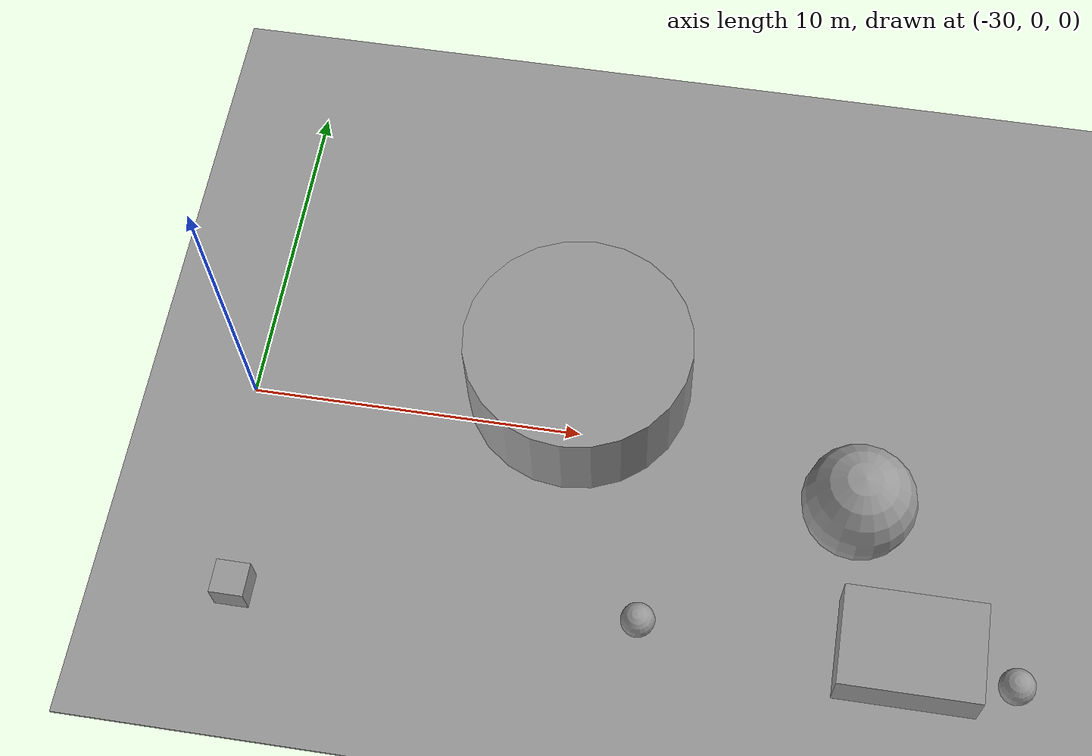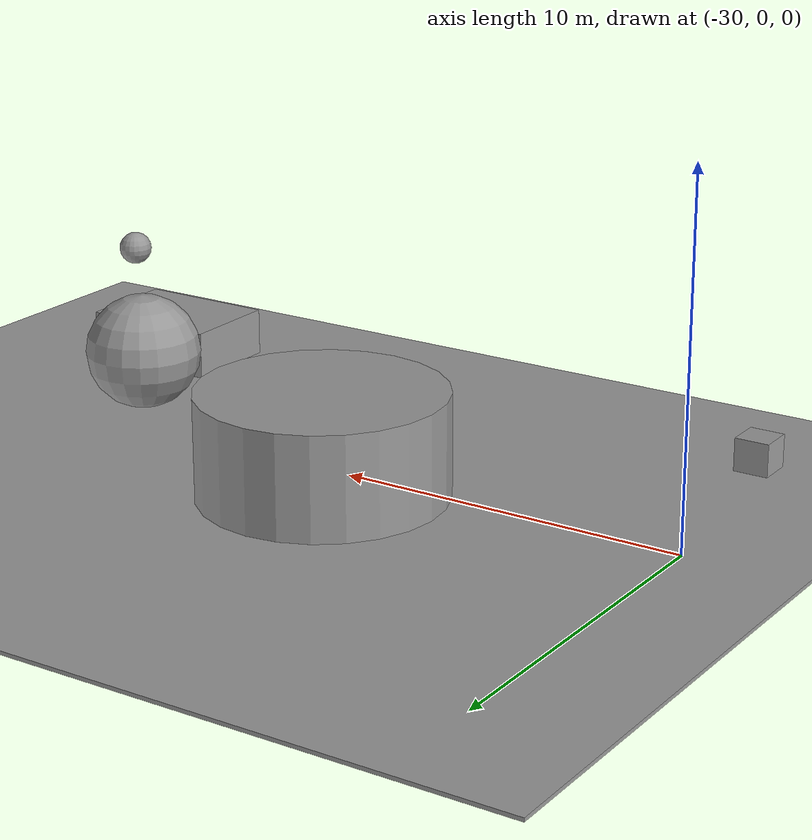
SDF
<sdf version="1.6">
 <world name="default">
  <light name="sun" type="directional">
   <pose>0 0 10 0 -0 0</pose>
   <diffuse>0.8 0.8 0.8 1</diffuse>
   <specular>0.2 0.2 0.2 1</specular>
   <attenuation>
    <range>1000</range>
    <constant>0.9</constant>
    <linear>0.01</linear>
    <quadratic>0.001</quadratic>
   </attenuation>
   <direction>-0.5 0.1 -0.9</direction>
  </light>
  <model name="ground_plane">
   <static>1</static>
   <link name="link">
    <collision name="collision">
     <geometry><plane><normal>0 0 1</normal><size>100 100</size></plane></geometry>
     <surface>
      <contact><collide_bitmask>65535</collide_bitmask></contact>
      <friction><ode><mu>100</mu><mu2>50</mu2></ode></friction>
     </surface>
    </collision>
    <visual name="visual">
     <cast_shadows>0</cast_shadows>
     <geometry><plane><normal>0 0 1</normal><size>100 100</size></plane></geometry>
     <material>
      <script><uri>file://media/materials/scripts/gazebo.material</uri><name>Gazebo/Grey</name></script>
     </material>
    </visual>
   </link>
  </model>
  <gravity>0 0 -9.8</gravity>
  <magnetic_field>6e-06 2.3e-05 -4.2e-05</magnetic_field>
  <atmosphere type="adiabatic"/>
  <physics name="default_physics" default="0" type="ode">
   <max_step_size>0.001</max_step_size>
   <real_time_factor>1</real_time_factor>
   <real_time_update_rate>1000</real_time_update_rate>
  </physics>
  <scene><ambient>0.4 0.4 0.4 1</ambient><background>0.7 0.7 0.7 1</background><shadows>1</shadows></scene>
  <spherical_coordinates>
   <surface_model>EARTH_WGS84</surface_model>
   <latitude_deg>0</latitude_deg>
   <longitude_deg>0</longitude_deg>
   <elevation>0</elevation>
   <heading_deg>0</heading_deg>
  </spherical_coordinates>
  <model name="ground_plane_0">
   <static>1</static>
   <link name="ground_plane_0::link">
    <collision name="collision">
     <geometry><plane><normal>0 0 1</normal><size>100 100</size></plane></geometry>
     <surface>
      <contact><collide_bitmask>65535</collide_bitmask></contact>
      <friction><ode><mu>100</mu><mu2>50</mu2></ode></friction>
     </surface>
    </collision>
    <visual name="visual">
     <cast_shadows>0</cast_shadows>
     <geometry><plane><normal>0 0 1</normal><size>100 100</size></plane></geometry>
     <material>
      <script><uri>file://media/materials/scripts/gazebo.material</uri><name>Gazebo/Grey</name></script>
     </material>
    </visual>
   </link>
   <pose>0.067805 0.094496 0 0 -0 0</pose>
  </model>
  <light name="user_point_light_0" type="point">
   <pose>-8.06988 14.5226 1 0 -0 0</pose>
   <diffuse>0.5 0.5 0.5 1</diffuse>
   <specular>0.1 0.1 0.1 1</specular>
   <attenuation>
    <range>20</range>
    <constant>0.5</constant>
    <linear>0.01</linear>
    <quadratic>0.001</quadratic>
   </attenuation>
   <cast_shadows>0</cast_shadows>
   <direction>0 0 -1</direction>
  </light>
  <light name="user_point_light_1" type="point">
   <pose>-21.1249 13.4233 1 0 -0 0</pose>
   <diffuse>0.5 0.5 0.5 1</diffuse>
   <specular>0.1 0.1 0.1 1</specular>
   <attenuation>
    <range>20</range>
    <constant>0.5</constant>
    <linear>0.01</linear>
    <quadratic>0.001</quadratic>
   </attenuation>
   <cast_shadows>0</cast_shadows>
   <direction>0 0 -1</direction>
  </light>
  <model name="unit_cylinder">
   <link name="link">
    <inertial>
     <mass>226.52</mass>
     <inertia><ixx>1107.4</ixx><ixy>0</ixy><ixz>0</ixz><iyy>1107.4</iyy><iyz>0</iyz><izz>1310.6</izz></inertia>
    </inertial>
    <visual name="visual">
     <geometry><cylinder><radius>3.40171</radius><length>4.89391</length></cylinder></geometry>
     <material>
      <script><name>Gazebo/Grey</name><uri>file://media/materials/scripts/gazebo.material</uri></script>
      <shader type="pixel"/>
     </material>
    </visual>
    <collision name="collision">
     <geometry><cylinder><radius>3.40171</radius><length>4.89391</length></cylinder></geometry>
     <surface>
      <friction>
       <ode><mu>1</mu><mu2>1</mu2><fdir1>0 0 0</fdir1><slip1>0</slip1><slip2>0</slip2></ode>
       <torsional>
        <coefficient>1</coefficient>
        <patch_radius>0</patch_radius>
        <surface_radius>0</surface_radius>
        <use_patch_radius>1</use_patch_radius>
        <ode><slip>0</slip></ode>
       </torsional>
      </friction>
      <bounce><restitution_coefficient>0</restitution_coefficient><threshold>1e+06</threshold></bounce>
      <contact>
       <collide_without_contact>0</collide_without_contact>
       <collide_without_contact_bitmask>1</collide_without_contact_bitmask>
       <collide_bitmask>1</collide_bitmask>
       <ode>
        <soft_cfm>0</soft_cfm>
        <soft_erp>0.2</soft_erp>
        <kp>1e+13</kp>
        <kd>1</kd>
        <max_vel>0.01</max_vel>
        <min_depth>0</min_depth>
       </ode>
       <bullet>
        <split_impulse>1</split_impulse>
        <split_impulse_penetration_threshold>-0.01</split_impulse_penetration_threshold>
        <soft_cfm>0</soft_cfm>
        <soft_erp>0.2</soft_erp>
        <kp>1e+13</kp>
        <kd>1</kd>
       </bullet>
      </contact>
     </surface>
    </collision>
   </link>
   <link name="link_0">
    <inertial>
     <mass>1</mass>
     <inertia><ixx>0.1</ixx><ixy>0</ixy><ixz>0</ixz><iyy>0.1</iyy><iyz>0</iyz><izz>0.1</izz></inertia>
    </inertial>
    <pose>2.83146 -7.29755 -0 0 -0 0</pose>
    <visual name="visual">
     <geometry><sphere><radius>0.5</radius></sphere></geometry>
     <material>
      <lighting>1</lighting>
      <script><uri>file://media/materials/scripts/gazebo.material</uri><name>Gazebo/Grey</name></script>
      <shader type="pixel"/>
     </material>
    </visual>
    <collision name="collision">
     <geometry><sphere><radius>0.5</radius></sphere></geometry>
     <surface>
      <friction>
       <ode><mu>1</mu><mu2>1</mu2><fdir1>0 0 0</fdir1><slip1>0</slip1><slip2>0</slip2></ode>
       <torsional>
        <coefficient>1</coefficient>
        <patch_radius>0</patch_radius>
        <surface_radius>0</surface_radius>
        <use_patch_radius>1</use_patch_radius>
        <ode><slip>0</slip></ode>
       </torsional>
      </friction>
      <bounce><restitution_coefficient>0</restitution_coefficient><threshold>1e+06</threshold></bounce>
      <contact>
       <collide_without_contact>0</collide_without_contact>
       <collide_without_contact_bitmask>1</collide_without_contact_bitmask>
       <collide_bitmask>1</collide_bitmask>
       <ode>
        <soft_cfm>0</soft_cfm>
        <soft_erp>0.2</soft_erp>
        <kp>1e+13</kp>
        <kd>1</kd>
        <max_vel>0.01</max_vel>
        <min_depth>0</min_depth>
       </ode>
       <bullet>
        <split_impulse>1</split_impulse>
        <split_impulse_penetration_threshold>-0.01</split_impulse_penetration_threshold>
        <soft_cfm>0</soft_cfm>
        <soft_erp>0.2</soft_erp>
        <kp>1e+13</kp>
        <kd>1</kd>
       </bullet>
      </contact>
     </surface>
    </collision>
   </link>
   <link name="link_1">
    <inertial>
     <mass>1</mass>
     <inertia>
      <ixx>0.166667</ixx>
      <ixy>0</ixy>
      <ixz>0</ixz>
      <iyy>0.166667</iyy>
      <iyz>0</iyz>
      <izz>0.166667</izz>
     </inertia>
    </inertial>
    <pose>-8.79955 -7.95536 0 0 -0 0</pose>
    <visual name="visual">
     <geometry><box><size>1 1 1</size></box></geometry>
     <material>
      <lighting>1</lighting>
      <script><uri>file://media/materials/scripts/gazebo.material</uri><name>Gazebo/Grey</name></script>
      <shader type="pixel"/>
     </material>
    </visual>
    <collision name="collision">
     <geometry><box><size>1 1 1</size></box></geometry>
     <surface>
      <friction>
       <ode><mu>1</mu><mu2>1</mu2><fdir1>0 0 0</fdir1><slip1>0</slip1><slip2>0</slip2></ode>
       <torsional>
        <coefficient>1</coefficient>
        <patch_radius>0</patch_radius>
        <surface_radius>0</surface_radius>
        <use_patch_radius>1</use_patch_radius>
        <ode><slip>0</slip></ode>
       </torsional>
      </friction>
      <bounce><restitution_coefficient>0</restitution_coefficient><threshold>1e+06</threshold></bounce>
      <contact>
       <collide_without_contact>0</collide_without_contact>
       <collide_without_contact_bitmask>1</collide_without_contact_bitmask>
       <collide_bitmask>1</collide_bitmask>
       <ode>
        <soft_cfm>0</soft_cfm>
        <soft_erp>0.2</soft_erp>
        <kp>1e+13</kp>
        <kd>1</kd>
        <max_vel>0.01</max_vel>
        <min_depth>0</min_depth>
       </ode>
       <bullet>
        <split_impulse>1</split_impulse>
        <split_impulse_penetration_threshold>-0.01</split_impulse_penetration_threshold>
        <soft_cfm>0</soft_cfm>
        <soft_erp>0.2</soft_erp>
        <kp>1e+13</kp>
        <kd>1</kd>
       </bullet>
      </contact>
     </surface>
    </collision>
   </link>
   <static>0</static>
   <pose>-20.2655 1.59478 0.5 0 -0 0</pose>
  </model>
  <model name="unit_sphere">
   <link name="link">
    <inertial>
     <mass>37.5637</mass>
     <inertia><ixx>42.1324</ixx><ixy>0</ixy><ixz>0</ixz><iyy>42.1324</iyy><iyz>0</iyz><izz>42.1324</izz></inertia>
    </inertial>
    <pose>1.34402 -1.55403 1.07855 0 -0 0</pose>
    <visual name="visual">
     <geometry><sphere><radius>1.67453</radius></sphere></geometry>
     <material>
      <script><name>Gazebo/Grey</name><uri>file://media/materials/scripts/gazebo.material</uri></script>
      <shader type="pixel"/>
     </material>
    </visual>
    <collision name="collision">
     <geometry><sphere><radius>1.67453</radius></sphere></geometry>
     <surface>
      <friction>
       <ode><mu>1</mu><mu2>1</mu2><fdir1>0 0 0</fdir1><slip1>0</slip1><slip2>0</slip2></ode>
       <torsional>
        <coefficient>1</coefficient>
        <patch_radius>0</patch_radius>
        <surface_radius>0</surface_radius>
        <use_patch_radius>1</use_patch_radius>
        <ode><slip>0</slip></ode>
       </torsional>
      </friction>
      <bounce><restitution_coefficient>0</restitution_coefficient><threshold>1e+06</threshold></bounce>
      <contact>
       <collide_without_contact>0</collide_without_contact>
       <collide_without_contact_bitmask>1</collide_without_contact_bitmask>
       <collide_bitmask>1</collide_bitmask>
       <ode>
        <soft_cfm>0</soft_cfm>
        <soft_erp>0.2</soft_erp>
        <kp>1e+13</kp>
        <kd>1</kd>
        <max_vel>0.01</max_vel>
        <min_depth>0</min_depth>
       </ode>
       <bullet>
        <split_impulse>1</split_impulse>
        <split_impulse_penetration_threshold>-0.01</split_impulse_penetration_threshold>
        <soft_cfm>0</soft_cfm>
        <soft_erp>0.2</soft_erp>
        <kp>1e+13</kp>
        <kd>1</kd>
       </bullet>
      </contact>
     </surface>
    </collision>
   </link>
   <static>0</static>
   <pose>-12.9638 -0.069066 0.49999 0 -0 0</pose>
  </model>
  <model name="unit_sphere_0">
   <link name="link">
    <inertial>
     <mass>1</mass>
     <inertia><ixx>0.1</ixx><ixy>0</ixy><ixz>0</ixz><iyy>0.1</iyy><iyz>0</iyz><izz>0.1</izz></inertia>
    </inertial>
    <pose>1.40034 2.8517 2.25695 0 -0 0</pose>
    <visual name="visual">
     <geometry><sphere><radius>0.5</radius></sphere></geometry>
     <material>
      <script><name>Gazebo/Grey</name><uri>file://media/materials/scripts/gazebo.material</uri></script>
      <shader type="pixel"/>
     </material>
    </visual>
    <collision name="collision">
     <geometry><sphere><radius>0.5</radius></sphere></geometry>
     <surface>
      <friction>
       <ode><mu>1</mu><mu2>1</mu2><fdir1>0 0 0</fdir1><slip1>0</slip1><slip2>0</slip2></ode>
       <torsional>
        <coefficient>1</coefficient>
        <patch_radius>0</patch_radius>
        <surface_radius>0</surface_radius>
        <use_patch_radius>1</use_patch_radius>
        <ode><slip>0</slip></ode>
       </torsional>
      </friction>
      <bounce><restitution_coefficient>0</restitution_coefficient><threshold>1e+06</threshold></bounce>
      <contact>
       <collide_without_contact>0</collide_without_contact>
       <collide_without_contact_bitmask>1</collide_without_contact_bitmask>
       <collide_bitmask>1</collide_bitmask>
       <ode>
        <soft_cfm>0</soft_cfm>
        <soft_erp>0.2</soft_erp>
        <kp>1e+13</kp>
        <kd>1</kd>
        <max_vel>0.01</max_vel>
        <min_depth>0</min_depth>
       </ode>
       <bullet>
        <split_impulse>1</split_impulse>
        <split_impulse_penetration_threshold>-0.01</split_impulse_penetration_threshold>
        <soft_cfm>0</soft_cfm>
        <soft_erp>0.2</soft_erp>
        <kp>1e+13</kp>
        <kd>1</kd>
       </bullet>
      </contact>
     </surface>
    </collision>
   </link>
   <static>0</static>
   <pose>-8.50664 -9.66838 0.5 0 -0 0</pose>
  </model>
  <model name="unit_box">
   <link name="link">
    <inertial>
     <mass>22.4367</mass>
     <inertia><ixx>22.6299</ixx><ixy>0</ixy><ixz>0</ixz><iyy>37.7059</iyy><iyz>0</iyz><izz>47.1412</izz></inertia>
    </inertial>
    <pose>3.15857 -0.280945 -2.7e-05 0 -0 0</pose>
    <visual name="visual">
     <geometry><box><size>4.07898 2.92828 1.87843</size></box></geometry>
     <material>
      <script><name>Gazebo/Grey</name><uri>file://media/materials/scripts/gazebo.material</uri></script>
      <shader type="pixel"><normal_map>__default__</normal_map></shader>
     </material>
    </visual>
    <collision name="collision">
     <geometry><box><size>4.07898 2.92828 1.87843</size></box></geometry>
     <surface>
      <friction>
       <ode><mu>1</mu><mu2>1</mu2><fdir1>0 0 0</fdir1><slip1>0</slip1><slip2>0</slip2></ode>
       <torsional>
        <coefficient>1</coefficient>
        <patch_radius>0</patch_radius>
        <surface_radius>0</surface_radius>
        <use_patch_radius>1</use_patch_radius>
        <ode><slip>0</slip></ode>
       </torsional>
      </friction>
      <bounce><restitution_coefficient>0</restitution_coefficient><threshold>1e+06</threshold></bounce>
      <contact>
       <collide_without_contact>0</collide_without_contact>
       <collide_without_contact_bitmask>1</collide_without_contact_bitmask>
       <collide_bitmask>1</collide_bitmask>
       <ode>
        <soft_cfm>0</soft_cfm>
        <soft_erp>0.2</soft_erp>
        <kp>1e+13</kp>
        <kd>1</kd>
        <max_vel>0.01</max_vel>
        <min_depth>0</min_depth>
       </ode>
       <bullet>
        <split_impulse>1</split_impulse>
        <split_impulse_penetration_threshold>-0.01</split_impulse_penetration_threshold>
        <soft_cfm>0</soft_cfm>
        <soft_erp>0.2</soft_erp>
        <kp>1e+13</kp>
        <kd>1</kd>
       </bullet>
      </contact>
     </surface>
    </collision>
   </link>
   <static>1</static>
   <pose>-12.8993 -5.26776 0.499996 0 -9e-06 0</pose>
  </model>
  <light name="user_point_light_2" type="point">
   <pose>124.394 -84.382 1 0 -0 0</pose>
   <diffuse>0.5 0.5 0.5 1</diffuse>
   <specular>0.1 0.1 0.1 1</specular>
   <attenuation>
    <range>20</range>
    <constant>0.5</constant>
    <linear>0.01</linear>
    <quadratic>0.001</quadratic>
   </attenuation>
   <cast_shadows>0</cast_shadows>
   <direction>0 0 -1</direction>
  </light>
  <light name="user_point_light_3" type="point">
   <pose>-9.05402 -3.33709 1 0 -0 0</pose>
   <diffuse>0.5 0.5 0.5 1</diffuse>
   <specular>0.1 0.1 0.1 1</specular>
   <attenuation>
    <range>20</range>
    <constant>0.5</constant>
    <linear>0.01</linear>
    <quadratic>0.001</quadratic>
   </attenuation>
   <cast_shadows>0</cast_shadows>
   <direction>0 0 -1</direction>
  </light>
 </world>
</sdf>
